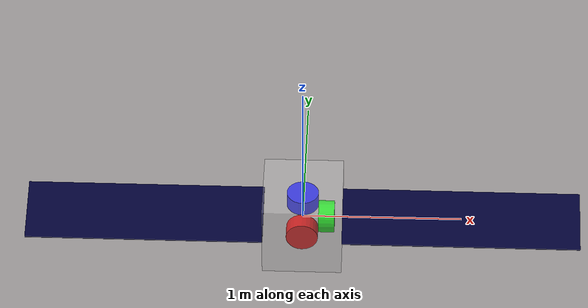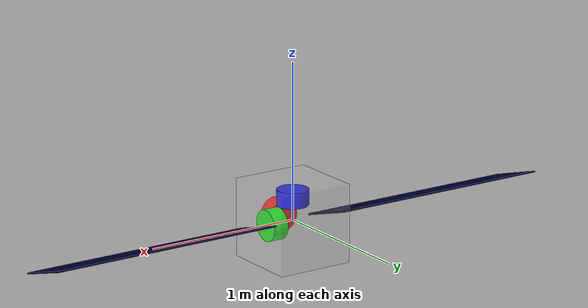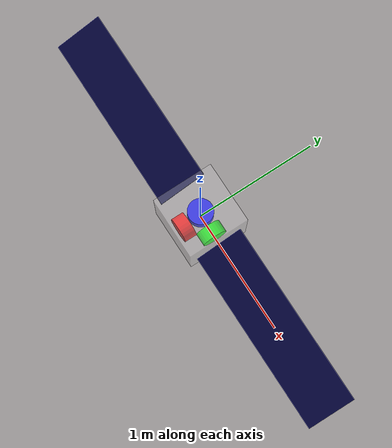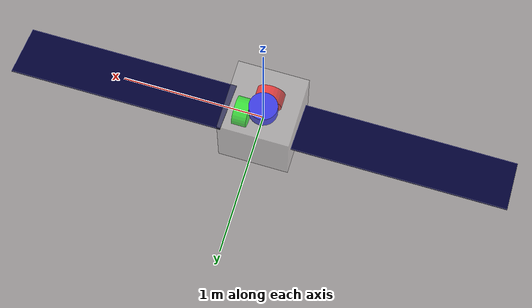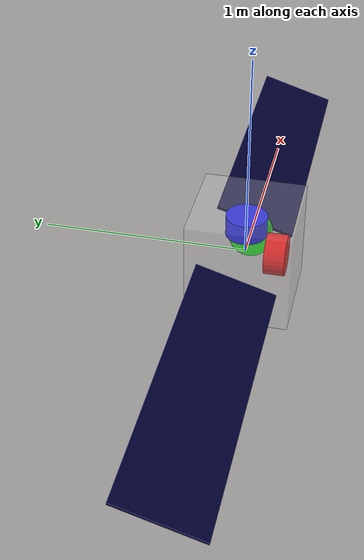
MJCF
<mujoco model="3-axis reaction wheel satellite">
  <compiler angle="radian"/>
  <option timestep="0.001" iterations="20" gravity="0 0 0">
    <flag sensornoise="enable"/>
  </option>

  <default>
    <geom rgba="0.45 0.6 0.6 1"/>
  </default>

  <asset>
    <texture type="skybox" builtin="gradient" rgb1="1 1 1" rgb2="1 1 1" width="32" height="512"/>
  </asset>

  <worldbody>
    <light directional="true" cutoff="4" exponent="20" diffuse="1 1 1" specular="0 0 0" pos=".9 .3 2.5" dir="-.9 -.3 -2.5"/>

    <body name="platform" pos="0 0 0">
      <site name="site-platform" pos="0 0 0"/>
      <joint name="platform-joint" type="free"/>

      <!-- Enclosing Cube -->
      <geom name="enclosure" type="box" pos="0 0 0" size=".25 .25 .25" density="1000" rgba="0.8 0.8 0.8 0.3"/>

      <!-- Reaction Wheel 1 -->
      <body name="wheel0" pos="0 -0.15 0">
        <joint name="axis0" type="hinge" axis="0 1 0"/>
        <geom name="wheel0" type="cylinder" pos="0 0 0" size=".1 .05" density="100" euler="1.57 0 0" rgba="0.9 0 0 1"/>
      </body>

      <!-- Reaction Wheel 2 -->
      <body name="wheel1" pos="0.15 0 0">
        <joint name="axis1" type="hinge" axis="1 0 0"/>
        <geom name="wheel1" type="cylinder" pos="0 0 0" size=".1 .05" density="100" euler="0 1.57 0" rgba="0 0.9 0 1"/>
      </body>

      <!-- Reaction Wheel 3 -->
      <body name="wheel2" pos="0 0 0.15">
        <joint name="axis2" type="hinge" axis="0 0 1"/>
        <geom name="wheel2" type="cylinder" pos="0 0 0" size=".1 .05" density="100" rgba="0 0 0.9 1"/>
      </body>

      <!-- Solar Panels -->
      <body name="solar_panel_left" pos="-1 0 0" euler="0.3 0 0">
        <geom name="solar_panel_geom_left" type="box" size="0.75 0.2 0.005" rgba="0 0 0.2 1"/>
      </body>
      <body name="solar_panel_right" pos="1 0 0" euler="0.3 0 0">
        <geom name="solar_panel_geom_right" type="box" size="0.75 0.2 0.005" rgba="0 0 0.2 1"/>
      </body>

    </body>
  </worldbody>

  <actuator>
    <velocity joint='axis0' name='motor1'/>
    <velocity joint='axis1' name='motor2'/>
    <velocity joint='axis2' name='motor3'/>
  </actuator>

  <sensor>
    <jointpos name="wheel0_pos" joint="axis0" noise="0.001"/>
    <jointvel name="wheel0_vel" joint="axis0" noise="0.001"/>
    <jointpos name="wheel1_pos" joint="axis1" noise="0.001"/>
    <jointvel name="wheel1_vel" joint="axis1" noise="0.001"/>
    <jointpos name="wheel2_pos" joint="axis2" noise="0.001"/>
    <jointvel name="wheel2_vel" joint="axis2" noise="0.001"/>
  </sensor>
</mujoco>
